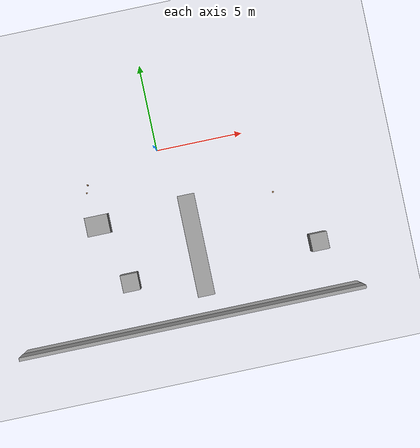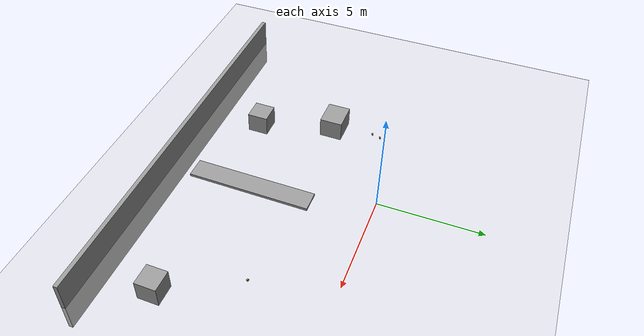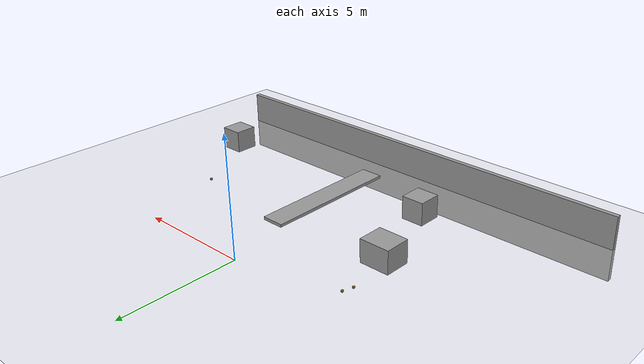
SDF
<sdf version="1.6">
 <world name="default">
  <model name="ground_plane">
   <static>1</static>
   <link name="link">
    <collision name="collision">
     <geometry><plane><normal>0 0 1</normal><size>100 100</size></plane></geometry>
     <surface><friction><ode><mu>100</mu><mu2>50</mu2></ode></friction></surface>
    </collision>
    <visual name="visual">
     <cast_shadows>0</cast_shadows>
     <geometry><plane><normal>0 0 1</normal><size>100 100</size></plane></geometry>
     <material>
      <script><uri>file://media/materials/scripts/gazebo.material</uri><name>Gazebo/Grey</name></script>
     </material>
    </visual>
   </link>
  </model>
  <model name="grey_wall_2">
   <link name="link">
    <inertial>
     <mass>1</mass>
     <inertia><ixx>1</ixx><ixy>0</ixy><ixz>0</ixz><iyy>1</iyy><iyz>0</iyz><izz>1</izz></inertia>
    </inertial>
    <visual name="visual">
     <cast_shadows>0</cast_shadows>
     <geometry><box><size>20 0.2 2.8</size></box></geometry>
     <material>
      <script>
       <uri>model://grey_wall/materials/scripts</uri>
       <uri>model://grey_wall/materials/textures</uri>
       <name>vrc/grey_wall</name>
      </script>
      <ambient>1 1 1 1</ambient>
      <diffuse>1 1 1 1</diffuse>
      <specular>0 0 0 1</specular>
      <emissive>0 0 0 1</emissive>
      <shader type="vertex"><normal_map>__default__</normal_map></shader>
     </material>
    </visual>
    <collision name="collision">
     <geometry><box><size>20 0.2 2.8</size></box></geometry>
     <surface>
      <friction>
       <ode><mu>1</mu><mu2>1</mu2><fdir1>0 0 0</fdir1><slip1>0</slip1><slip2>0</slip2></ode>
       <torsional>
        <coefficient>1</coefficient>
        <patch_radius>0</patch_radius>
        <surface_radius>0</surface_radius>
        <use_patch_radius>1</use_patch_radius>
        <ode><slip>0</slip></ode>
       </torsional>
      </friction>
      <bounce><restitution_coefficient>0</restitution_coefficient><threshold>1e+06</threshold></bounce>
      <contact>
       <collide_without_contact>0</collide_without_contact>
       <collide_without_contact_bitmask>1</collide_without_contact_bitmask>
       <collide_bitmask>1</collide_bitmask>
       <ode>
        <soft_cfm>0</soft_cfm>
        <soft_erp>0.2</soft_erp>
        <kp>1e+13</kp>
        <kd>1</kd>
        <max_vel>0.01</max_vel>
        <min_depth>0</min_depth>
       </ode>
       <bullet>
        <split_impulse>1</split_impulse>
        <split_impulse_penetration_threshold>-0.01</split_impulse_penetration_threshold>
        <soft_cfm>0</soft_cfm>
        <soft_erp>0.2</soft_erp>
        <kp>1e+13</kp>
        <kd>1</kd>
       </bullet>
      </contact>
     </surface>
    </collision>
   </link>
   <static>1</static>
   <pose>0 -10 0 0 -0 0</pose>
  </model>
  <model name="unit_box_3">
   <pose>1.08224 -5.80465 0.058131 -0.002196 -0 -0.000283</pose>
   <link name="unit_box_3::unit_box_3::unit_box_3::unit_box_3::unit_box_3::unit_box_3::link">
    <inertial>
     <mass>1</mass>
     <inertia>
      <ixx>0.166667</ixx>
      <ixy>0</ixy>
      <ixz>0</ixz>
      <iyy>0.166667</iyy>
      <iyz>0</iyz>
      <izz>0.166667</izz>
     </inertia>
    </inertial>
    <collision name="collision"><geometry><box><size>1 5.97463 0.129379</size></box></geometry></collision>
    <visual name="visual">
     <geometry><box><size>1 5.97463 0.129379</size></box></geometry>
     <material>
      <script><name>Gazebo/Grey</name><uri>file://media/materials/scripts/gazebo.material</uri></script>
     </material>
    </visual>
   </link>
  </model>
  <model name="unit_box_4">
   <pose>-4.16237 -3.50219 0.499999 -5e-06 -2e-06 2e-06</pose>
   <link name="link">
    <inertial>
     <mass>1</mass>
     <inertia>
      <ixx>0.166667</ixx>
      <ixy>0</ixy>
      <ixz>0</ixz>
      <iyy>0.166667</iyy>
      <iyz>0</iyz>
      <izz>0.166667</izz>
     </inertia>
    </inertial>
    <collision name="collision"><geometry><box><size>1.32862 1.10201 1</size></box></geometry></collision>
    <visual name="visual">
     <geometry><box><size>1.32862 1.10201 1</size></box></geometry>
     <material>
      <script><name>Gazebo/Grey</name><uri>file://media/materials/scripts/gazebo.material</uri></script>
     </material>
    </visual>
   </link>
  </model>
  <model name="unit_box_8">
   <pose>8 -6.99999 0.499995 0 1e-05 -5e-06</pose>
   <link name="link">
    <inertial>
     <mass>1</mass>
     <inertia>
      <ixx>0.166667</ixx>
      <ixy>0</ixy>
      <ixz>0</ixz>
      <iyy>0.166667</iyy>
      <iyz>0</iyz>
      <izz>0.166667</izz>
     </inertia>
    </inertial>
    <collision name="collision"><geometry><box><size>1 1 1</size></box></geometry></collision>
    <visual name="visual">
     <geometry><box><size>1 1 1</size></box></geometry>
     <material>
      <script><name>Gazebo/Grey</name><uri>file://media/materials/scripts/gazebo.material</uri></script>
     </material>
    </visual>
   </link>
  </model>
  <model name="unit_box_9">
   <pose>-3.0093 -7.07425 0.499995 0 1e-05 -5e-06</pose>
   <link name="link">
    <inertial>
     <mass>1</mass>
     <inertia>
      <ixx>0.166667</ixx>
      <ixy>0</ixy>
      <ixz>0</ixz>
      <iyy>0.166667</iyy>
      <iyz>0</iyz>
      <izz>0.166667</izz>
     </inertia>
    </inertial>
    <collision name="collision"><geometry><box><size>1 1 1</size></box></geometry></collision>
    <visual name="visual">
     <geometry><box><size>1 1 1</size></box></geometry>
     <material>
      <script><name>Gazebo/Grey</name><uri>file://media/materials/scripts/gazebo.material</uri></script>
     </material>
    </visual>
   </link>
  </model>
  <model name="wood_cube_7_5cm_clone_9">
   <link name="link">
    <pose>0 0 0.0375 0 -0 0</pose>
    <inertial>
     <mass>0.2249</mass>
     <inertia>
      <ixx>0.000210844</ixx>
      <ixy>0</ixy>
      <ixz>0</ixz>
      <iyy>0.000210844</iyy>
      <iyz>0</iyz>
      <izz>0.000210844</izz>
     </inertia>
    </inertial>
    <collision name="collision">
     <geometry><box><size>0.075 0.075 0.075</size></box></geometry>
     <surface>
      <contact>
       <poissons_ratio>0.347</poissons_ratio>
       <elastic_modulus>8.8e+09</elastic_modulus>
       <ode><kp>100000</kp><kd>100</kd><max_vel>100</max_vel><min_depth>0.001</min_depth></ode>
      </contact>
      <friction>
       <torsional>
        <coefficient>1</coefficient>
        <use_patch_radius>0</use_patch_radius>
        <surface_radius>0.01</surface_radius>
       </torsional>
      </friction>
     </surface>
    </collision>
    <visual name="visual">
     <geometry><box><size>0.075 0.075 0.075</size></box></geometry>
     <material>
      <script><uri>file://media/materials/scripts/gazebo.material</uri><name>Gazebo/Wood</name></script>
     </material>
    </visual>
   </link>
   <pose>-4.46926 -1.55552 -0.001005 0 -0 0</pose>
  </model>
  <model name="wood_cube_7_5cm_clone_11">
   <link name="link">
    <pose>0 0 0.0375 0 -0 0</pose>
    <inertial>
     <mass>0.2249</mass>
     <inertia>
      <ixx>0.000210844</ixx>
      <ixy>0</ixy>
      <ixz>0</ixz>
      <iyy>0.000210844</iyy>
      <iyz>0</iyz>
      <izz>0.000210844</izz>
     </inertia>
    </inertial>
    <collision name="collision">
     <geometry><box><size>0.075 0.075 0.075</size></box></geometry>
     <surface>
      <contact>
       <poissons_ratio>0.347</poissons_ratio>
       <elastic_modulus>8.8e+09</elastic_modulus>
       <ode><kp>100000</kp><kd>100</kd><max_vel>100</max_vel><min_depth>0.001</min_depth></ode>
      </contact>
      <friction>
       <torsional>
        <coefficient>1</coefficient>
        <use_patch_radius>0</use_patch_radius>
        <surface_radius>0.01</surface_radius>
       </torsional>
      </friction>
     </surface>
    </collision>
    <visual name="visual">
     <geometry><box><size>0.075 0.075 0.075</size></box></geometry>
     <material>
      <script><uri>file://media/materials/scripts/gazebo.material</uri><name>Gazebo/Wood</name></script>
     </material>
    </visual>
   </link>
   <pose>-4.33978 -1.12304 -0.001005 0 -0 0</pose>
  </model>
  <model name="wood_cube_7_5cm_clone_14">
   <link name="link">
    <pose>0 0 0.0375 0 -0 0</pose>
    <inertial>
     <mass>0.2249</mass>
     <inertia>
      <ixx>0.000210844</ixx>
      <ixy>0</ixy>
      <ixz>0</ixz>
      <iyy>0.000210844</iyy>
      <iyz>0</iyz>
      <izz>0.000210844</izz>
     </inertia>
    </inertial>
    <collision name="collision">
     <geometry><box><size>0.075 0.075 0.075</size></box></geometry>
     <surface>
      <contact>
       <poissons_ratio>0.347</poissons_ratio>
       <elastic_modulus>8.8e+09</elastic_modulus>
       <ode><kp>100000</kp><kd>100</kd><max_vel>100</max_vel><min_depth>0.001</min_depth></ode>
      </contact>
      <friction>
       <torsional>
        <coefficient>1</coefficient>
        <use_patch_radius>0</use_patch_radius>
        <surface_radius>0.01</surface_radius>
       </torsional>
      </friction>
     </surface>
    </collision>
    <visual name="visual">
     <geometry><box><size>0.075 0.075 0.075</size></box></geometry>
     <material>
      <script><uri>file://media/materials/scripts/gazebo.material</uri><name>Gazebo/Wood</name></script>
     </material>
    </visual>
   </link>
   <pose>6.07733 -3.66884 0.036495 -1.5708 0 2.92546</pose>
  </model>
 </world>
</sdf>
